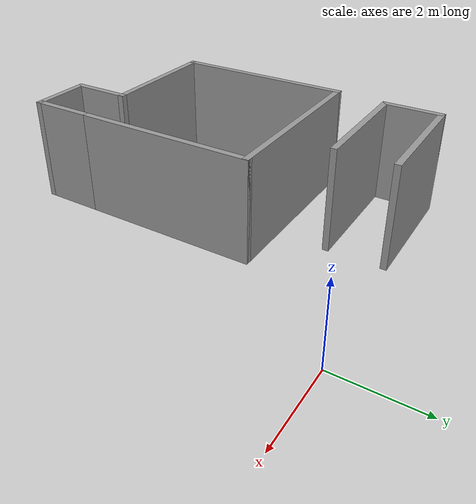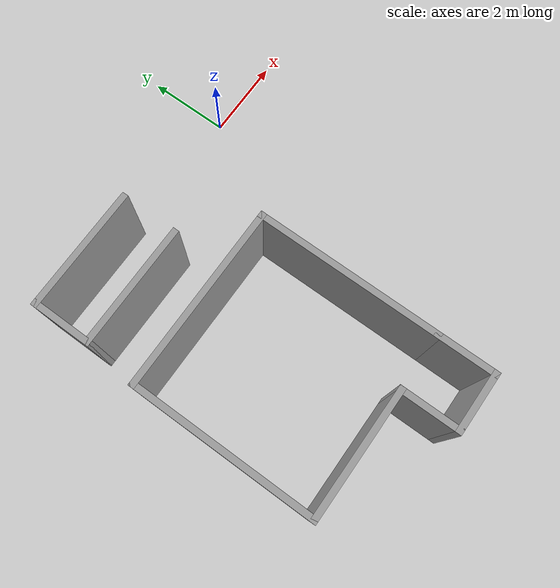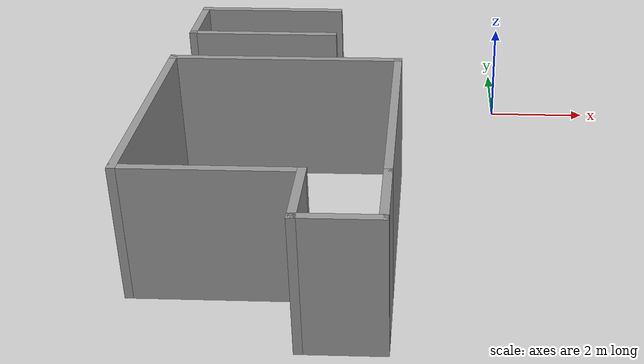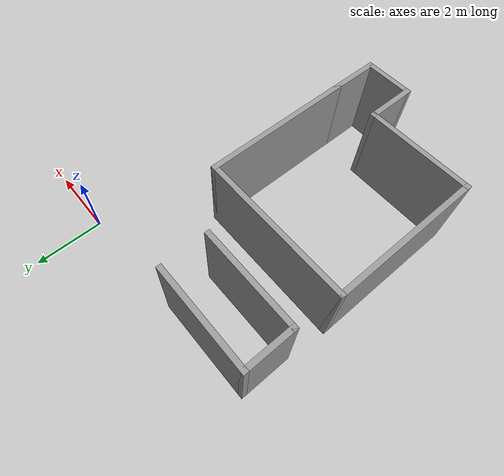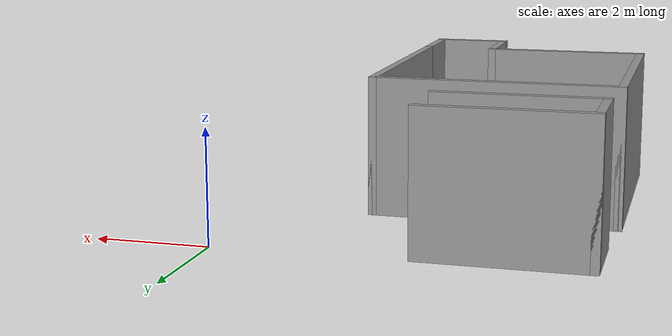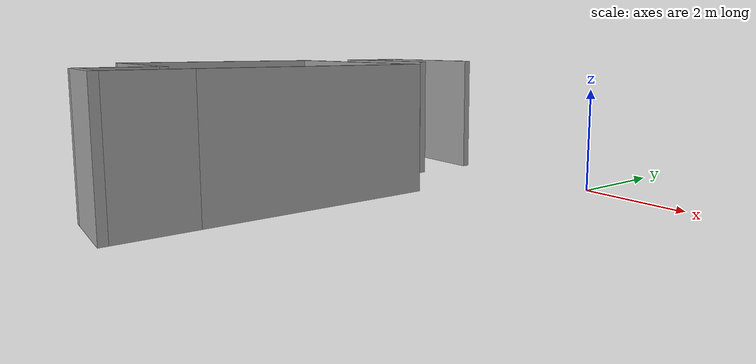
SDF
<?xml version='1.0'?>
<sdf version='1.6'>
  <model name='Hallway_and_Room'>
    <pose frame=''>-4.20156 -4.31048 0 0 -0 0</pose>
    <link name='Wall_31'>
      <collision name='Wall_31_Collision'>
        <geometry>
          <box>
            <size>3 0.15 2.5</size>
          </box>
        </geometry>
        <pose frame=''>0 0 1.25 0 -0 0</pose>
      </collision>
      <visual name='Wall_31_Visual'>
        <pose frame=''>0 0 1.25 0 -0 0</pose>
        <geometry>
          <box>
            <size>3 0.15 2.5</size>
          </box>
        </geometry>
        <material>
          <script>
            <uri>file://media/materials/scripts/gazebo.material</uri>
            <name>Gazebo/Grey</name>
          </script>
          <ambient>1 1 1 1</ambient>
        </material>
      </visual>
      <pose frame=''>-0.626091 4.16075 0 0 -0 0</pose>
    </link>
    <link name='Wall_33'>
      <collision name='Wall_33_Collision'>
        <geometry>
          <box>
            <size>1.5 0.15 2.5</size>
          </box>
        </geometry>
        <pose frame=''>0 0 1.25 0 -0 0</pose>
      </collision>
      <visual name='Wall_33_Visual'>
        <pose frame=''>0 0 1.25 0 -0 0</pose>
        <geometry>
          <box>
            <size>1.5 0.15 2.5</size>
          </box>
        </geometry>
        <material>
          <script>
            <uri>file://media/materials/scripts/gazebo.material</uri>
            <name>Gazebo/Grey</name>
          </script>
          <ambient>1 1 1 1</ambient>
        </material>
      </visual>
      <pose frame=''>-2.05109 3.48575 0 0 0 -1.5708</pose>
    </link>
    <link name='Wall_34'>
      <collision name='Wall_34_Collision'>
        <geometry>
          <box>
            <size>3 0.15 2.5</size>
          </box>
        </geometry>
        <pose frame=''>0 0 1.25 0 -0 0</pose>
      </collision>
      <visual name='Wall_34_Visual'>
        <pose frame=''>0 0 1.25 0 -0 0</pose>
        <geometry>
          <box>
            <size>3 0.15 2.5</size>
          </box>
        </geometry>
        <material>
          <script>
            <uri>file://media/materials/scripts/gazebo.material</uri>
            <name>Gazebo/Grey</name>
          </script>
          <ambient>1 1 1 1</ambient>
        </material>
      </visual>
      <pose frame=''>-0.626091 2.81075 0 0 -0 0</pose>
    </link>
    <link name='Wall_36'>
      <collision name='Wall_36_Collision'>
        <geometry>
          <box>
            <size>4.5 0.15 2.5</size>
          </box>
        </geometry>
        <pose frame=''>0 0 1.25 0 -0 0</pose>
      </collision>
      <visual name='Wall_36_Visual'>
        <pose frame=''>0 0 1.25 0 -0 0</pose>
        <geometry>
          <box>
            <size>4.5 0.15 2.5</size>
          </box>
        </geometry>
        <material>
          <script>
            <uri>file://media/materials/scripts/gazebo.material</uri>
            <name>Gazebo/Grey</name>
          </script>
          <ambient>1 1 1 1</ambient>
        </material>
      </visual>
      <pose frame=''>0 1.53925 0 0 -0 0</pose>
    </link>
    <link name='Wall_37'>
      <collision name='Wall_37_Collision'>
        <geometry>
          <box>
            <size>4.5 0.15 2.5</size>
          </box>
        </geometry>
        <pose frame=''>0 0 1.25 0 -0 0</pose>
      </collision>
      <visual name='Wall_37_Visual'>
        <pose frame=''>0 0 1.25 0 -0 0</pose>
        <geometry>
          <box>
            <size>4.5 0.15 2.5</size>
          </box>
        </geometry>
        <material>
          <script>
            <uri>file://media/materials/scripts/gazebo.material</uri>
            <name>Gazebo/Grey</name>
          </script>
          <ambient>1 1 1 1</ambient>
        </material>
      </visual>
      <pose frame=''>2.175 -0.63575 0 0 0 -1.5708</pose>
    </link>
    <link name='Wall_39'>
      <collision name='Wall_39_Collision'>
        <geometry>
          <box>
            <size>4.5 0.15 2.5</size>
          </box>
        </geometry>
        <pose frame=''>0 0 1.25 0 -0 0</pose>
      </collision>
      <visual name='Wall_39_Visual'>
        <pose frame=''>0 0 1.25 0 -0 0</pose>
        <geometry>
          <box>
            <size>4.5 0.15 2.5</size>
          </box>
        </geometry>
        <material>
          <script>
            <uri>file://media/materials/scripts/gazebo.material</uri>
            <name>Gazebo/Grey</name>
          </script>
          <ambient>1 1 1 1</ambient>
        </material>
      </visual>
      <pose frame=''>-2.175 -0.63575 0 0 0 -1.5708</pose>
    </link>
    <link name='Wall_41'>
      <collision name='Wall_41_Collision'>
        <geometry>
          <box>
            <size>1.5 0.15 2.5</size>
          </box>
        </geometry>
        <pose frame=''>0 0 1.25 0 -0 0</pose>
      </collision>
      <visual name='Wall_41_Visual'>
        <pose frame=''>0 0 1.25 0 -0 0</pose>
        <geometry>
          <box>
            <size>1.5 0.15 2.5</size>
          </box>
        </geometry>
        <material>
          <script>
            <uri>file://media/materials/scripts/gazebo.material</uri>
            <name>Gazebo/Grey</name>
          </script>
          <ambient>1 1 1 1</ambient>
        </material>
      </visual>
      <pose frame=''>2.175 -3.48575 0 0 0 -1.5708</pose>
    </link>
    <link name='Wall_42'>
      <collision name='Wall_42_Collision'>
        <geometry>
          <box>
            <size>1.5 0.15 2.5</size>
          </box>
        </geometry>
        <pose frame=''>0 0 1.25 0 -0 0</pose>
      </collision>
      <visual name='Wall_42_Visual'>
        <pose frame=''>0 0 1.25 0 -0 0</pose>
        <geometry>
          <box>
            <size>1.5 0.15 2.5</size>
          </box>
        </geometry>
        <material>
          <script>
            <uri>file://media/materials/scripts/gazebo.material</uri>
            <name>Gazebo/Grey</name>
          </script>
          <ambient>1 1 1 1</ambient>
        </material>
      </visual>
      <pose frame=''>1.5 -4.16075 0 0 -0 3.14159</pose>
    </link>
    <link name='Wall_43'>
      <collision name='Wall_43_Collision'>
        <geometry>
          <box>
            <size>1.5 0.15 2.5</size>
          </box>
        </geometry>
        <pose frame=''>0 0 1.25 0 -0 0</pose>
      </collision>
      <visual name='Wall_43_Visual'>
        <pose frame=''>0 0 1.25 0 -0 0</pose>
        <geometry>
          <box>
            <size>1.5 0.15 2.5</size>
          </box>
        </geometry>
        <material>
          <script>
            <uri>file://media/materials/scripts/gazebo.material</uri>
            <name>Gazebo/Grey</name>
          </script>
          <ambient>1 1 1 1</ambient>
        </material>
      </visual>
      <pose frame=''>0.825 -3.48575 0 0 -0 1.5708</pose>
    </link>
    <link name='Wall_44'>
      <collision name='Wall_44_Collision'>
        <geometry>
          <box>
            <size>3.15 0.15 2.5</size>
          </box>
        </geometry>
        <pose frame=''>0 0 1.25 0 -0 0</pose>
      </collision>
      <visual name='Wall_44_Visual'>
        <pose frame=''>0 0 1.25 0 -0 0</pose>
        <geometry>
          <box>
            <size>3.15 0.15 2.5</size>
          </box>
        </geometry>
        <material>
          <script>
            <uri>file://media/materials/scripts/gazebo.material</uri>
            <name>Gazebo/Grey</name>
          </script>
          <ambient>1 1 1 1</ambient>
        </material>
      </visual>
      <pose frame=''>-0.675 -2.81075 0 0 -0 3.14159</pose>
    </link>
    <static>1</static>
  </model>
</sdf>
